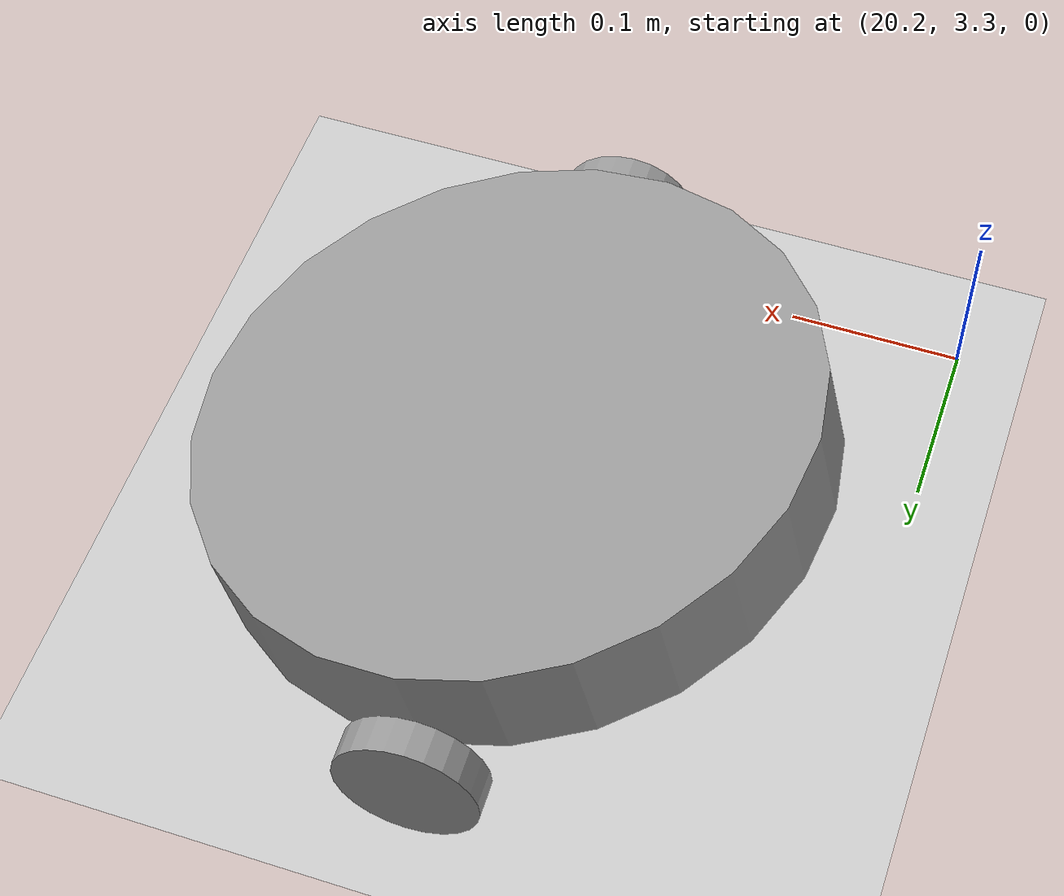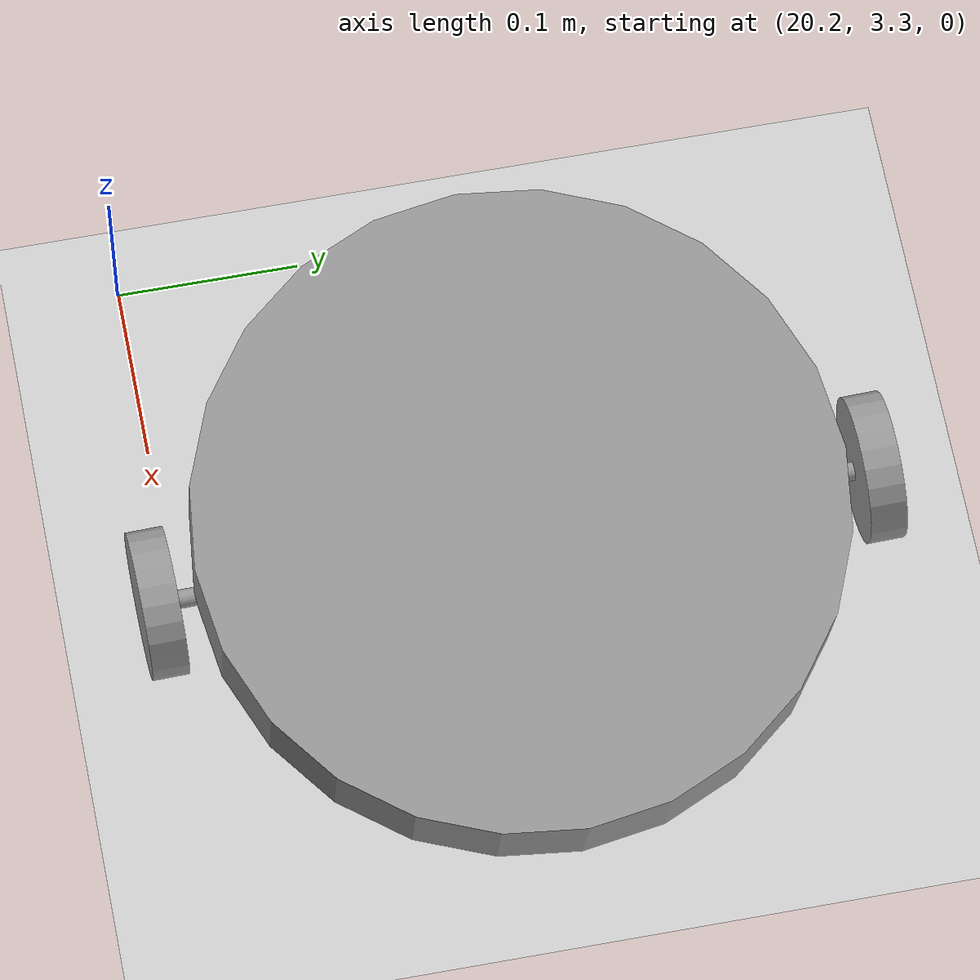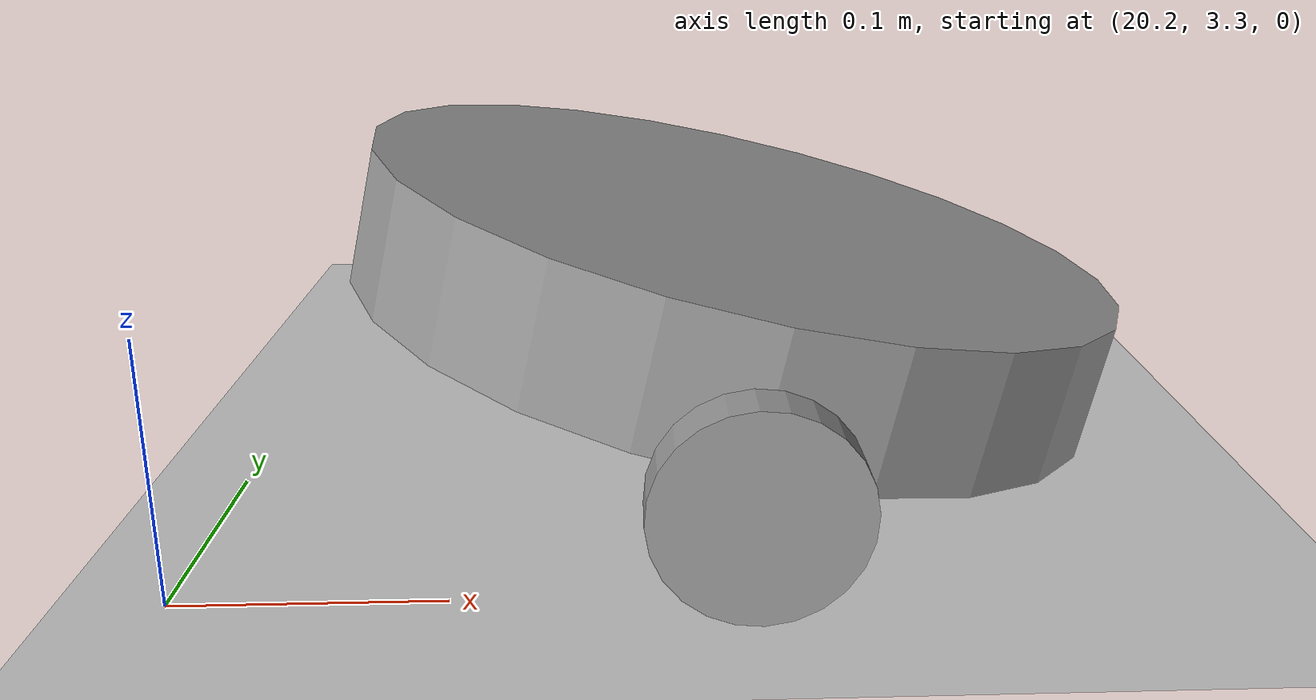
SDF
<sdf version="1.6">
 <world name="default">
  <model name="ground_plane">
   <static>1</static>
   <link name="link">
    <collision name="collision">
     <geometry><plane><normal>0 0 1</normal><size>100 100</size></plane></geometry>
     <surface>
      <contact><collide_bitmask>65535</collide_bitmask></contact>
      <friction><ode><mu>100</mu><mu2>50</mu2></ode></friction>
     </surface>
    </collision>
    <visual name="visual">
     <cast_shadows>0</cast_shadows>
     <geometry><plane><normal>0 0 1</normal><size>100 100</size></plane></geometry>
     <material>
      <script><uri>file://media/materials/scripts/gazebo.material</uri><name>Gazebo/Grey</name></script>
     </material>
    </visual>
   </link>
  </model>
  <model name="vacuum_robot_0">
   <link name="link_0_0">
    <pose>-0.357654 -0.121448 0.03 -6e-06 -1e-06 0.000206</pose>
    <inertial>
     <mass>1</mass>
     <inertia><ixx>0.145833</ixx><ixy>0</ixy><ixz>0</ixz><iyy>0.145833</iyy><iyz>0</iyz><izz>0.125</izz></inertia>
    </inertial>
    <visual name="visual">
     <geometry><cylinder><radius>0.175</radius><length>0.06</length></cylinder></geometry>
     <material>
      <lighting>1</lighting>
      <script><uri>file://media/materials/scripts/gazebo.material</uri><name>Gazebo/Grey</name></script>
      <shader type="pixel"><normal_map>__default__</normal_map></shader>
      <ambient>0.3 0.3 0.3 1</ambient>
      <diffuse>0.7 0.7 0.7 1</diffuse>
      <specular>0.01 0.01 0.01 1</specular>
      <emissive>0 0 0 1</emissive>
     </material>
    </visual>
    <collision name="collision">
     <geometry><cylinder><radius>0.175</radius><length>0.06</length></cylinder></geometry>
     <surface>
      <friction>
       <ode><mu>1</mu><mu2>1</mu2><fdir1>0 0 0</fdir1><slip1>0</slip1><slip2>0</slip2></ode>
       <torsional>
        <coefficient>1</coefficient>
        <patch_radius>0</patch_radius>
        <surface_radius>0</surface_radius>
        <use_patch_radius>1</use_patch_radius>
        <ode><slip>0</slip></ode>
       </torsional>
      </friction>
      <bounce><restitution_coefficient>0</restitution_coefficient><threshold>1e+06</threshold></bounce>
      <contact>
       <collide_without_contact>0</collide_without_contact>
       <collide_without_contact_bitmask>1</collide_without_contact_bitmask>
       <collide_bitmask>1</collide_bitmask>
       <ode>
        <soft_cfm>0</soft_cfm>
        <soft_erp>0.2</soft_erp>
        <kp>1e+13</kp>
        <kd>1</kd>
        <max_vel>0.01</max_vel>
        <min_depth>0</min_depth>
       </ode>
       <bullet>
        <split_impulse>1</split_impulse>
        <split_impulse_penetration_threshold>-0.01</split_impulse_penetration_threshold>
        <soft_cfm>0</soft_cfm>
        <soft_erp>0.2</soft_erp>
        <kp>1e+13</kp>
        <kd>1</kd>
       </bullet>
      </contact>
     </surface>
    </collision>
   </link>
   <link name="link_1">
    <pose>-0.357614 -0.316577 0.000459 1.57 -1e-06 0.000206</pose>
    <inertial>
     <mass>1</mass>
     <inertia><ixx>0.145833</ixx><ixy>0</ixy><ixz>0</ixz><iyy>0.145833</iyy><iyz>0</iyz><izz>0.125</izz></inertia>
    </inertial>
    <visual name="visual">
     <geometry><cylinder><radius>0.04</radius><length>0.02</length></cylinder></geometry>
     <material>
      <lighting>1</lighting>
      <script><uri>file://media/materials/scripts/gazebo.material</uri><name>Gazebo/Grey</name></script>
      <shader type="pixel"><normal_map>__default__</normal_map></shader>
      <ambient>0.3 0.3 0.3 1</ambient>
      <diffuse>0.7 0.7 0.7 1</diffuse>
      <specular>0.01 0.01 0.01 1</specular>
      <emissive>0 0 0 1</emissive>
     </material>
    </visual>
    <collision name="collision">
     <geometry><cylinder><radius>0.04</radius><length>0.02</length></cylinder></geometry>
     <surface>
      <friction>
       <ode><mu>1</mu><mu2>1</mu2><fdir1>0 0 0</fdir1><slip1>0</slip1><slip2>0</slip2></ode>
       <torsional>
        <coefficient>1</coefficient>
        <patch_radius>0</patch_radius>
        <surface_radius>0</surface_radius>
        <use_patch_radius>1</use_patch_radius>
        <ode><slip>0</slip></ode>
       </torsional>
      </friction>
      <bounce><restitution_coefficient>0</restitution_coefficient><threshold>1e+06</threshold></bounce>
      <contact>
       <collide_without_contact>0</collide_without_contact>
       <collide_without_contact_bitmask>1</collide_without_contact_bitmask>
       <collide_bitmask>1</collide_bitmask>
       <ode>
        <soft_cfm>0</soft_cfm>
        <soft_erp>0.2</soft_erp>
        <kp>1e+13</kp>
        <kd>1</kd>
        <max_vel>0.01</max_vel>
        <min_depth>0</min_depth>
       </ode>
       <bullet>
        <split_impulse>1</split_impulse>
        <split_impulse_penetration_threshold>-0.01</split_impulse_penetration_threshold>
        <soft_cfm>0</soft_cfm>
        <soft_erp>0.2</soft_erp>
        <kp>1e+13</kp>
        <kd>1</kd>
       </bullet>
      </contact>
     </surface>
    </collision>
   </link>
   <link name="link_1_clone">
    <pose>-0.357695 0.073703 0.000303 1.56999 -2e-06 0.000412</pose>
    <inertial>
     <mass>1</mass>
     <inertia><ixx>0.145833</ixx><ixy>0</ixy><ixz>0</ixz><iyy>0.145833</iyy><iyz>0</iyz><izz>0.125</izz></inertia>
    </inertial>
    <visual name="visual">
     <geometry><cylinder><radius>0.04</radius><length>0.02</length></cylinder></geometry>
     <material>
      <lighting>1</lighting>
      <script><uri>file://media/materials/scripts/gazebo.material</uri><name>Gazebo/Grey</name></script>
      <shader type="pixel"><normal_map>__default__</normal_map></shader>
      <ambient>0.3 0.3 0.3 1</ambient>
      <diffuse>0.7 0.7 0.7 1</diffuse>
      <specular>0.01 0.01 0.01 1</specular>
      <emissive>0 0 0 1</emissive>
     </material>
    </visual>
    <collision name="collision">
     <geometry><cylinder><radius>0.04</radius><length>0.02</length></cylinder></geometry>
     <surface>
      <friction>
       <ode><mu>1</mu><mu2>1</mu2><fdir1>0 0 0</fdir1><slip1>0</slip1><slip2>0</slip2></ode>
       <torsional>
        <coefficient>1</coefficient>
        <patch_radius>0</patch_radius>
        <surface_radius>0</surface_radius>
        <use_patch_radius>1</use_patch_radius>
        <ode><slip>0</slip></ode>
       </torsional>
      </friction>
      <bounce><restitution_coefficient>0</restitution_coefficient><threshold>1e+06</threshold></bounce>
      <contact>
       <collide_without_contact>0</collide_without_contact>
       <collide_without_contact_bitmask>1</collide_without_contact_bitmask>
       <collide_bitmask>1</collide_bitmask>
       <ode>
        <soft_cfm>0</soft_cfm>
        <soft_erp>0.2</soft_erp>
        <kp>1e+13</kp>
        <kd>1</kd>
        <max_vel>0.01</max_vel>
        <min_depth>0</min_depth>
       </ode>
       <bullet>
        <split_impulse>1</split_impulse>
        <split_impulse_penetration_threshold>-0.01</split_impulse_penetration_threshold>
        <soft_cfm>0</soft_cfm>
        <soft_erp>0.2</soft_erp>
        <kp>1e+13</kp>
        <kd>1</kd>
       </bullet>
      </contact>
     </surface>
    </collision>
   </link>
   <link name="link_2">
    <pose>-0.357654 -0.121448 0 1.57 -1e-06 0.000206</pose>
    <inertial>
     <mass>1</mass>
     <inertia><ixx>0.145833</ixx><ixy>0</ixy><ixz>0</ixz><iyy>0.145833</iyy><iyz>0</iyz><izz>0.125</izz></inertia>
    </inertial>
    <visual name="visual">
     <geometry><cylinder><radius>0.005</radius><length>0.37</length></cylinder></geometry>
     <material>
      <lighting>1</lighting>
      <script><uri>file://media/materials/scripts/gazebo.material</uri><name>Gazebo/Grey</name></script>
      <shader type="pixel"><normal_map>__default__</normal_map></shader>
      <ambient>0.3 0.3 0.3 1</ambient>
      <diffuse>0.7 0.7 0.7 1</diffuse>
      <specular>0.01 0.01 0.01 1</specular>
      <emissive>0 0 0 1</emissive>
     </material>
    </visual>
    <collision name="collision">
     <geometry><cylinder><radius>0.005</radius><length>0.37</length></cylinder></geometry>
     <surface>
      <friction>
       <ode><mu>1</mu><mu2>1</mu2><fdir1>0 0 0</fdir1><slip1>0</slip1><slip2>0</slip2></ode>
       <torsional>
        <coefficient>1</coefficient>
        <patch_radius>0</patch_radius>
        <surface_radius>0</surface_radius>
        <use_patch_radius>1</use_patch_radius>
        <ode><slip>0</slip></ode>
       </torsional>
      </friction>
      <bounce><restitution_coefficient>0</restitution_coefficient><threshold>1e+06</threshold></bounce>
      <contact>
       <collide_without_contact>0</collide_without_contact>
       <collide_without_contact_bitmask>1</collide_without_contact_bitmask>
       <collide_bitmask>1</collide_bitmask>
       <ode>
        <soft_cfm>0</soft_cfm>
        <soft_erp>0.2</soft_erp>
        <kp>1e+13</kp>
        <kd>1</kd>
        <max_vel>0.01</max_vel>
        <min_depth>0</min_depth>
       </ode>
       <bullet>
        <split_impulse>1</split_impulse>
        <split_impulse_penetration_threshold>-0.01</split_impulse_penetration_threshold>
        <soft_cfm>0</soft_cfm>
        <soft_erp>0.2</soft_erp>
        <kp>1e+13</kp>
        <kd>1</kd>
       </bullet>
      </contact>
     </surface>
    </collision>
   </link>
   <joint name="link_0_0_JOINT_0" type="fixed">
    <parent>link_0_0</parent>
    <child>link_2</child>
    <physics>
     <ode><limit><cfm>0</cfm><erp>0.2</erp></limit><suspension><cfm>0</cfm><erp>0.2</erp></suspension></ode>
    </physics>
   </joint>
   <joint name="link_2_JOINT_4" type="revolute">
    <parent>link_2</parent>
    <child>link_1_clone</child>
    <axis>
     <xyz>0 0 1</xyz>
     <use_parent_model_frame>0</use_parent_model_frame>
     <limit><lower>-1e+16</lower><upper>1e+16</upper><effort>-1</effort><velocity>-1</velocity></limit>
     <dynamics>
      <spring_reference>0</spring_reference>
      <spring_stiffness>0</spring_stiffness>
      <damping>0</damping>
      <friction>0</friction>
     </dynamics>
    </axis>
    <physics>
     <ode><limit><cfm>0</cfm><erp>0.2</erp></limit><suspension><cfm>0</cfm><erp>0.2</erp></suspension></ode>
    </physics>
   </joint>
   <joint name="link_2_JOINT_5" type="revolute2">
    <parent>link_2</parent>
    <child>link_1</child>
    <axis>
     <xyz>1 0 0</xyz>
     <use_parent_model_frame>0</use_parent_model_frame>
     <limit>
      <lower>-1.79769e+308</lower>
      <upper>1.79769e+308</upper>
      <effort>-1</effort>
      <velocity>-1</velocity>
     </limit>
     <dynamics>
      <spring_reference>0</spring_reference>
      <spring_stiffness>0</spring_stiffness>
      <damping>0</damping>
     </dynamics>
    </axis>
    <axis2>
     <xyz>0 1 0</xyz>
     <use_parent_model_frame>0</use_parent_model_frame>
     <dynamics>
      <spring_reference>0</spring_reference>
      <spring_stiffness>0</spring_stiffness>
      <damping>0</damping>
     </dynamics>
     <limit>
      <lower>-1.79769e+308</lower>
      <upper>1.79769e+308</upper>
      <effort>-1</effort>
      <velocity>-1</velocity>
     </limit>
    </axis2>
    <physics>
     <ode><limit><cfm>0</cfm><erp>0.2</erp></limit><suspension><cfm>0</cfm><erp>0.2</erp></suspension></ode>
    </physics>
   </joint>
   <static>0</static>
   <pose>20.7506 3.61307 -0.041282 0.000355 0.228326 0.022747</pose>
  </model>
 </world>
</sdf>
